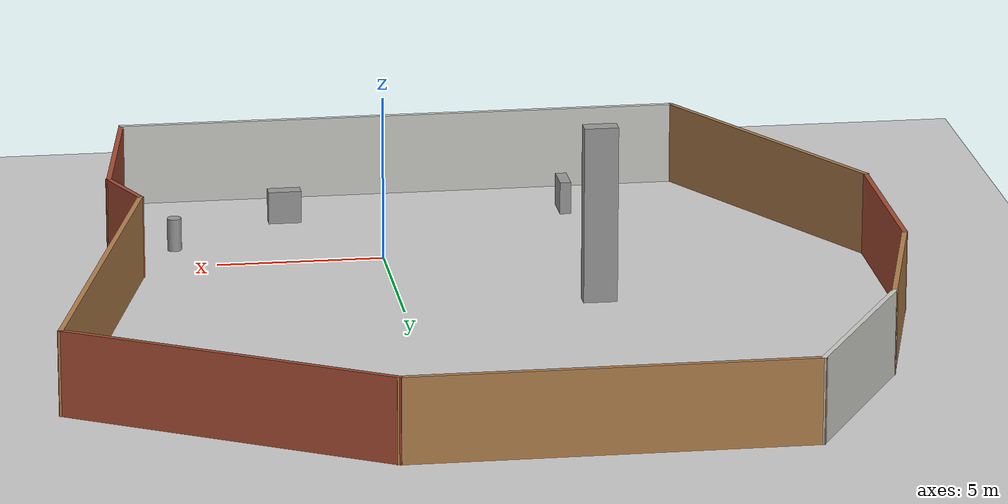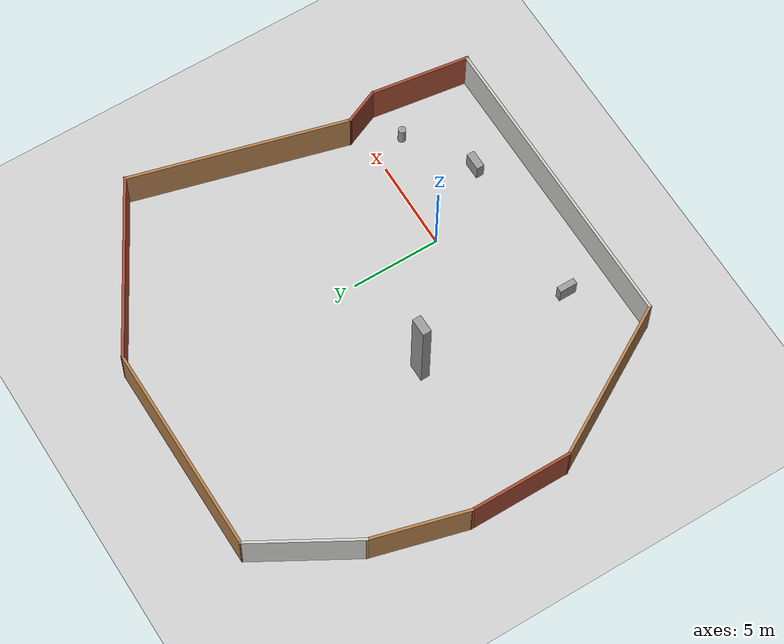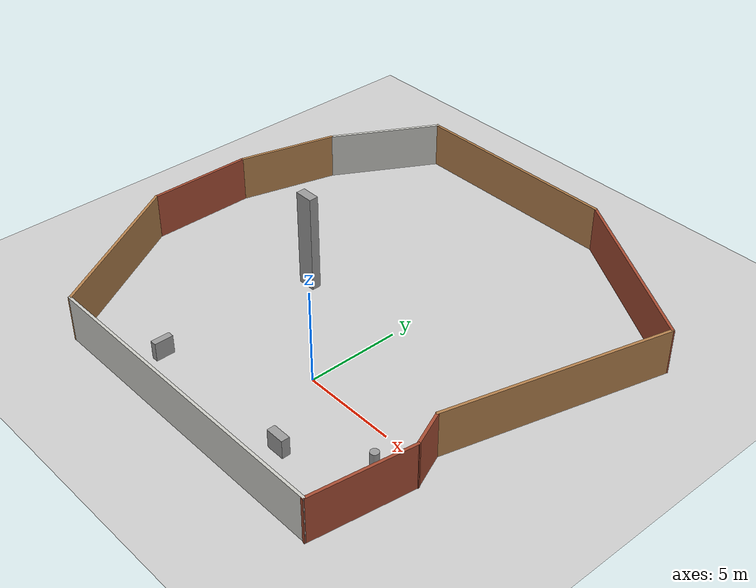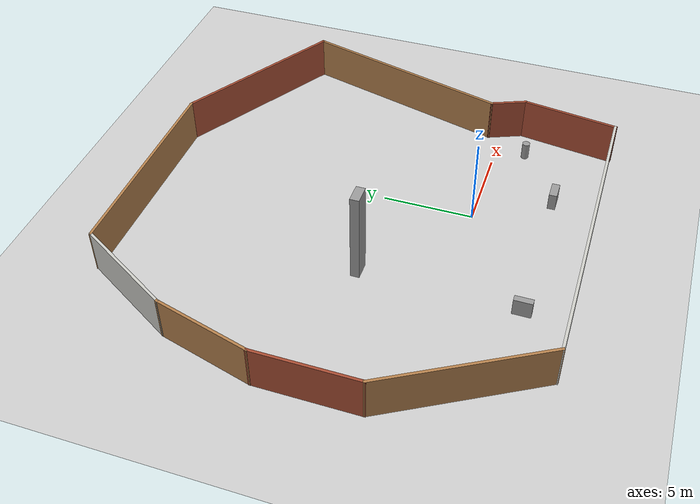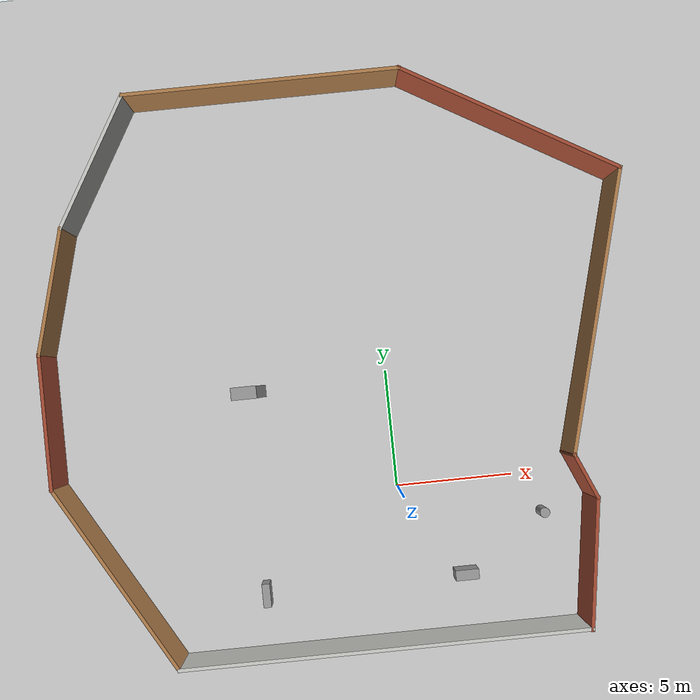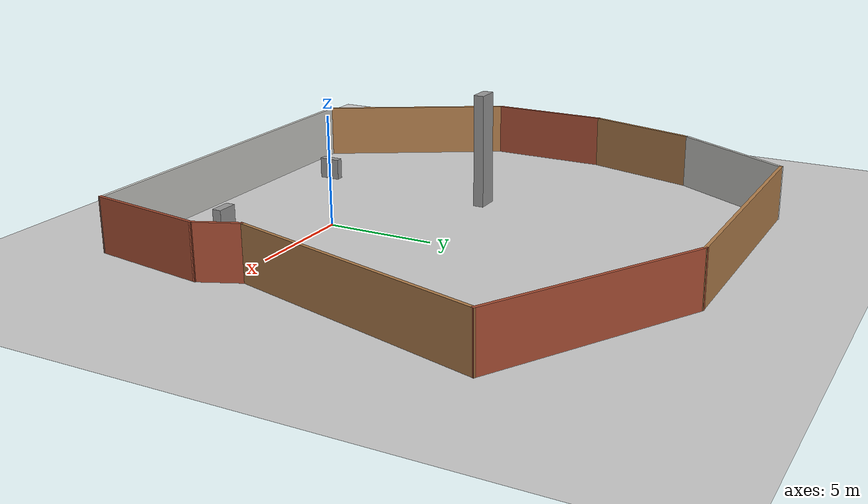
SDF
<sdf version="1.7">
 <world name="default">
  <light name="sun" type="directional">
   <pose>0 0 10 0 -0 0</pose>
   <diffuse>0.8 0.8 0.8 1</diffuse>
   <specular>0.2 0.2 0.2 1</specular>
   <attenuation>
    <range>1000</range>
    <constant>0.9</constant>
    <linear>0.01</linear>
    <quadratic>0.001</quadratic>
   </attenuation>
   <direction>-0.5 0.1 -0.9</direction>
   <spot><inner_angle>0</inner_angle><outer_angle>0</outer_angle><falloff>0</falloff></spot>
  </light>
  <model name="ground_plane">
   <static>1</static>
   <link name="link">
    <collision name="collision">
     <geometry><plane><normal>0 0 1</normal><size>100 100</size></plane></geometry>
     <surface><friction><ode><mu>100</mu><mu2>50</mu2></ode></friction></surface>
    </collision>
    <visual name="visual">
     <cast_shadows>0</cast_shadows>
     <geometry><plane><normal>0 0 1</normal><size>100 100</size></plane></geometry>
     <material>
      <script><uri>file://media/materials/scripts/gazebo.material</uri><name>Gazebo/Grey</name></script>
     </material>
    </visual>
   </link>
  </model>
  <gravity>0 0 -9.8</gravity>
  <magnetic_field>6e-06 2.3e-05 -4.2e-05</magnetic_field>
  <atmosphere type="adiabatic"/>
  <physics type="ode">
   <max_step_size>0.001</max_step_size>
   <real_time_factor>1</real_time_factor>
   <real_time_update_rate>1000</real_time_update_rate>
  </physics>
  <scene><ambient>0.4 0.4 0.4 1</ambient><background>0.7 0.7 0.7 1</background><shadows>1</shadows></scene>
  <audio><device>default</device></audio>
  <spherical_coordinates>
   <surface_model>EARTH_WGS84</surface_model>
   <latitude_deg>0</latitude_deg>
   <longitude_deg>0</longitude_deg>
   <elevation>0</elevation>
   <heading_deg>0</heading_deg>
  </spherical_coordinates>
  <model name="unit_box">
   <pose>-6.04544 -4.03752 0.499998 -5e-06 -2e-06 0.000193</pose>
   <link name="link">
    <inertial>
     <mass>1</mass>
     <inertia>
      <ixx>0.166667</ixx>
      <ixy>0</ixy>
      <ixz>0</ixz>
      <iyy>0.166667</iyy>
      <iyz>0</iyz>
      <izz>0.166667</izz>
     </inertia>
    </inertial>
    <collision name="collision"><geometry><box><size>0.340922 1 1</size></box></geometry></collision>
    <visual name="visual">
     <geometry><box><size>0.340922 1 1</size></box></geometry>
     <material>
      <script><name>Gazebo/Grey</name><uri>file://media/materials/scripts/gazebo.material</uri></script>
     </material>
    </visual>
   </link>
  </model>
  <model name="unit_box_0">
   <pose>2.56439 -4.00086 0.5 0 0 -1e-06</pose>
   <link name="link">
    <inertial>
     <mass>1</mass>
     <inertia>
      <ixx>0.166667</ixx>
      <ixy>0</ixy>
      <ixz>0</ixz>
      <iyy>0.166667</iyy>
      <iyz>0</iyz>
      <izz>0.166667</izz>
     </inertia>
    </inertial>
    <collision name="collision"><geometry><box><size>1 0.43742 1</size></box></geometry></collision>
    <visual name="visual">
     <geometry><box><size>1 0.43742 1</size></box></geometry>
     <material>
      <script><name>Gazebo/Grey</name><uri>file://media/materials/scripts/gazebo.material</uri></script>
     </material>
    </visual>
   </link>
  </model>
  <model name="unit_box_1">
   <pose>-5.78841 4.65696 2.65471 0.00017 -0 -0.001483</pose>
   <link name="link">
    <inertial>
     <mass>1</mass>
     <inertia>
      <ixx>0.166667</ixx>
      <ixy>0</ixy>
      <ixz>0</ixz>
      <iyy>0.166667</iyy>
      <iyz>0</iyz>
      <izz>0.166667</izz>
     </inertia>
    </inertial>
    <collision name="collision"><geometry><box><size>1 0.491821 5.30932</size></box></geometry></collision>
    <visual name="visual">
     <geometry><box><size>1 0.491821 5.30932</size></box></geometry>
     <material>
      <script><name>Gazebo/Grey</name><uri>file://media/materials/scripts/gazebo.material</uri></script>
     </material>
    </visual>
   </link>
  </model>
  <model name="unit_cylinder_1">
   <pose>6.12369 -1.69396 0.499996 0 -0 4e-06</pose>
   <link name="link">
    <inertial>
     <mass>1</mass>
     <inertia><ixx>0.145833</ixx><ixy>0</ixy><ixz>0</ixz><iyy>0.145833</iyy><iyz>0</iyz><izz>0.125</izz></inertia>
    </inertial>
    <collision name="collision">
     <geometry><cylinder><radius>0.21366</radius><length>1</length></cylinder></geometry>
    </collision>
    <visual name="visual">
     <geometry><cylinder><radius>0.21366</radius><length>1</length></cylinder></geometry>
     <material>
      <script><name>Gazebo/Grey</name><uri>file://media/materials/scripts/gazebo.material</uri></script>
     </material>
    </visual>
   </link>
  </model>
  <model name="hangart">
   <pose>-1.94583 5.52532 0 0 -0 0</pose>
   <link name="Wall_1">
    <collision name="Wall_1_Collision">
     <geometry><box><size>17.25 0.15 2.5</size></box></geometry>
     <pose>0 0 1.25 0 -0 0</pose>
    </collision>
    <visual name="Wall_1_Visual">
     <pose>0 0 1.25 0 -0 0</pose>
     <geometry><box><size>17.25 0.15 2.5</size></box></geometry>
     <material>
      <script><uri>file://media/materials/scripts/gazebo.material</uri><name>Gazebo/CeilingTiled</name></script>
      <ambient>1 1 1 1</ambient>
     </material>
     <meta><layer>0</layer></meta>
    </visual>
    <pose>0.709231 -11.9568 0 0 -0 0</pose>
   </link>
   <link name="Wall_10">
    <collision name="Wall_10_Collision">
     <geometry><box><size>12.25 0.15 2.5</size></box></geometry>
     <pose>0 0 1.25 0 -0 0</pose>
    </collision>
    <visual name="Wall_10_Visual">
     <pose>0 0 1.25 0 -0 0</pose>
     <geometry><box><size>12.25 0.15 2.5</size></box></geometry>
     <material>
      <script><uri>file://media/materials/scripts/gazebo.material</uri><name>Gazebo/Wood</name></script>
      <ambient>1 1 1 1</ambient>
     </material>
     <meta><layer>0</layer></meta>
    </visual>
    <pose>10.8249 1.08068 0 0 -0 -1.8326</pose>
   </link>
   <link name="Wall_11">
    <collision name="Wall_11_Collision">
     <geometry><box><size>2.15761 0.15 2.5</size></box></geometry>
     <pose>0 0 1.25 0 -0 0</pose>
    </collision>
    <visual name="Wall_11_Visual">
     <pose>0 0 1.25 0 -0 0</pose>
     <geometry><box><size>2.15761 0.15 2.5</size></box></geometry>
     <material>
      <script><uri>file://media/materials/scripts/gazebo.material</uri><name>Gazebo/Bricks</name></script>
      <ambient>1 1 1 1</ambient>
     </material>
     <meta><layer>0</layer></meta>
    </visual>
    <pose>9.65228 -5.68675 0 0 -0 -1.16828</pose>
   </link>
   <link name="Wall_2">
    <collision name="Wall_2_Collision">
     <geometry><box><size>5.58874 0.15 2.5</size></box></geometry>
     <pose>0 0 1.25 0 -0 0</pose>
    </collision>
    <visual name="Wall_2_Visual">
     <pose>0 0 1.25 0 -0 0</pose>
     <geometry><box><size>5.58874 0.15 2.5</size></box></geometry>
     <material>
      <script><uri>file://media/materials/scripts/gazebo.material</uri><name>Gazebo/Bricks</name></script>
      <ambient>1 1 1 1</ambient>
     </material>
     <meta><layer>0</layer></meta>
    </visual>
    <pose>9.65237 -9.30113 0 0 -0 1.42572</pose>
   </link>
   <link name="Wall_4">
    <collision name="Wall_4_Collision">
     <geometry><box><size>9.25 0.15 2.5</size></box></geometry>
     <pose>0 0 1.25 0 -0 0</pose>
    </collision>
    <visual name="Wall_4_Visual">
     <pose>0 0 1.25 0 -0 0</pose>
     <geometry><box><size>9.25 0.15 2.5</size></box></geometry>
     <material>
      <script><uri>file://media/materials/scripts/gazebo.material</uri><name>Gazebo/Wood</name></script>
      <ambient>1 1 1 1</ambient>
     </material>
     <meta><layer>0</layer></meta>
    </visual>
    <pose>-10.1158 -8.01634 0 0 -0 2.0944</pose>
   </link>
   <link name="Wall_5">
    <collision name="Wall_5_Collision">
     <geometry><box><size>5.75 0.15 2.5</size></box></geometry>
     <pose>0 0 1.25 0 -0 0</pose>
    </collision>
    <visual name="Wall_5_Visual">
     <pose>0 0 1.25 0 -0 0</pose>
     <geometry><box><size>5.75 0.15 2.5</size></box></geometry>
     <material>
      <script><uri>file://media/materials/scripts/gazebo.material</uri><name>Gazebo/Bricks</name></script>
      <ambient>1 1 1 1</ambient>
     </material>
     <meta><layer>0</layer></meta>
    </visual>
    <pose>-12.3908 -1.27592 0 0 -0 1.5708</pose>
   </link>
   <link name="Wall_6">
    <collision name="Wall_6_Collision">
     <geometry><box><size>5.5 0.15 2.5</size></box></geometry>
     <pose>0 0 1.25 0 -0 0</pose>
    </collision>
    <visual name="Wall_6_Visual">
     <pose>0 0 1.25 0 -0 0</pose>
     <geometry><box><size>5.5 0.15 2.5</size></box></geometry>
     <material>
      <script><uri>file://media/materials/scripts/gazebo.material</uri><name>Gazebo/Wood</name></script>
      <ambient>1 1 1 1</ambient>
     </material>
     <meta><layer>0</layer></meta>
    </visual>
    <pose>-11.6984 4.10793 0 0 -0 1.309</pose>
   </link>
   <link name="Wall_7">
    <collision name="Wall_7_Collision">
     <geometry><box><size>6.25 0.15 2.5</size></box></geometry>
     <pose>0 0 1.25 0 -0 0</pose>
    </collision>
    <visual name="Wall_7_Visual">
     <pose>0 0 1.25 0 -0 0</pose>
     <geometry><box><size>6.25 0.15 2.5</size></box></geometry>
     <material>
      <script><uri>file://media/materials/scripts/gazebo.material</uri><name>Gazebo/CeilingTiled</name></script>
      <ambient>1 1 1 1</ambient>
     </material>
     <meta><layer>0</layer></meta>
    </visual>
    <pose>-9.48109 9.33316 0 0 -0 1.0472</pose>
   </link>
   <link name="Wall_8">
    <collision name="Wall_8_Collision">
     <geometry><box><size>11.75 0.15 2.5</size></box></geometry>
     <pose>0 0 1.25 0 -0 0</pose>
    </collision>
    <visual name="Wall_8_Visual">
     <pose>0 0 1.25 0 -0 0</pose>
     <geometry><box><size>11.75 0.15 2.5</size></box></geometry>
     <material>
      <script><uri>file://media/materials/scripts/gazebo.material</uri><name>Gazebo/Wood</name></script>
      <ambient>1 1 1 1</ambient>
     </material>
     <meta><layer>0</layer></meta>
    </visual>
    <pose>-2.15609 11.9745 0 0 -0 0</pose>
   </link>
   <link name="Wall_9">
    <collision name="Wall_9_Collision">
     <geometry><box><size>10.25 0.15 2.5</size></box></geometry>
     <pose>0 0 1.25 0 -0 0</pose>
    </collision>
    <visual name="Wall_9_Visual">
     <pose>0 0 1.25 0 -0 0</pose>
     <geometry><box><size>10.25 0.15 2.5</size></box></geometry>
     <material>
      <script><uri>file://media/materials/scripts/gazebo.material</uri><name>Gazebo/Bricks</name></script>
      <ambient>1 1 1 1</ambient>
     </material>
     <meta><layer>0</layer></meta>
    </visual>
    <pose>8.01734 9.44953 0 0 -0 -0.523599</pose>
   </link>
   <static>1</static>
  </model>
 </world>
</sdf>
